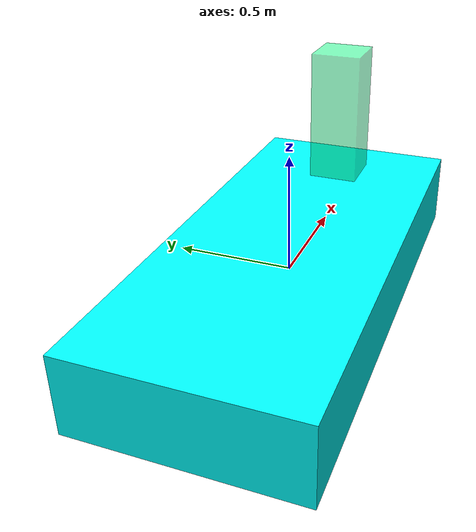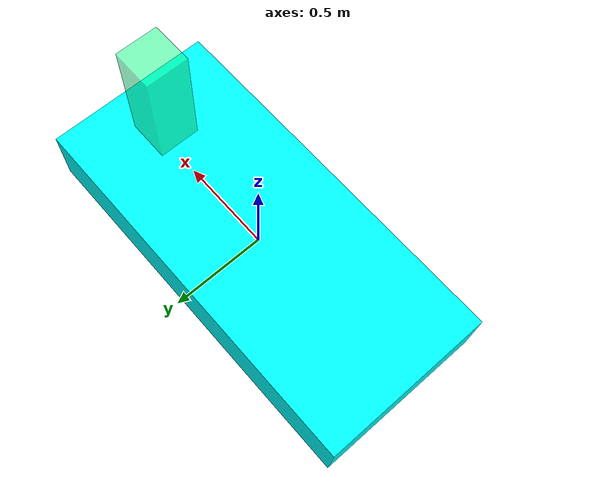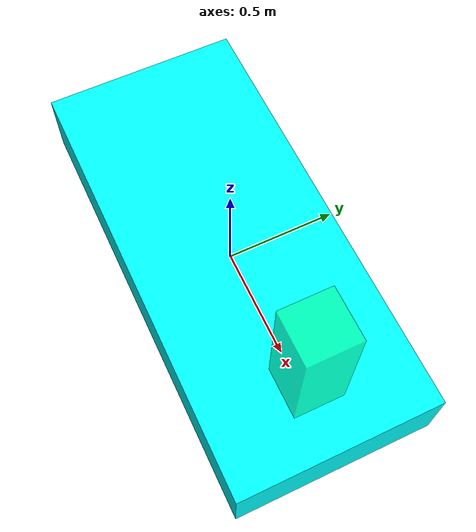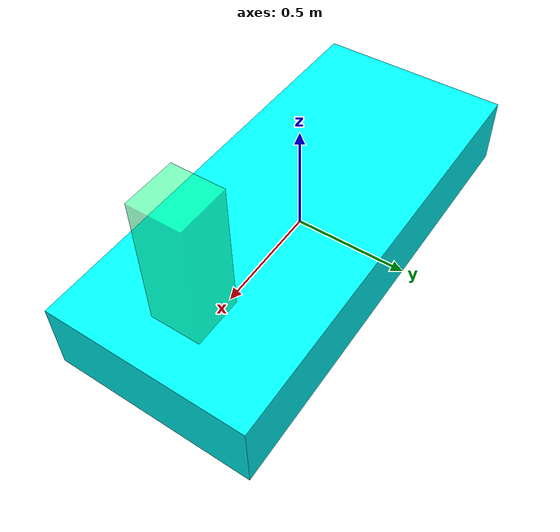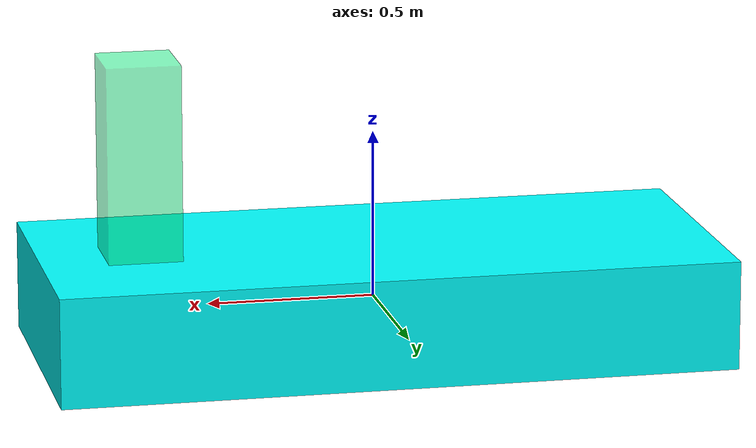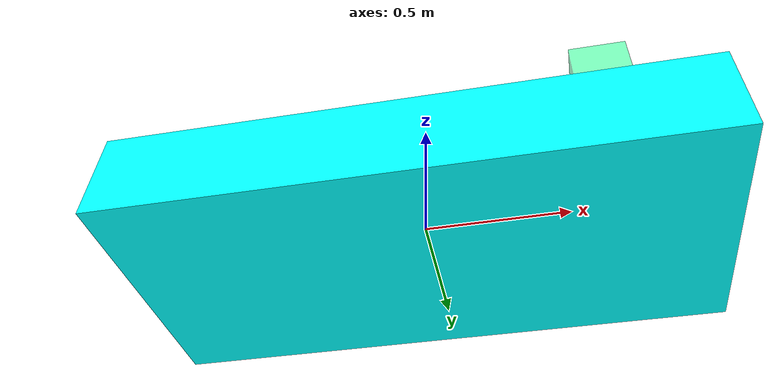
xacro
<?xml version="1.0"?>
<robot name="bautiro_fus1" xmlns:xacro="http://ros.org/wiki/xacro">

<!-- TODO: check names of sensor frames for each sensor in data -->
<link name="base_link" />
  <link name="viz_model">
      <visual>
      <geometry>
        <box size="2.01 0.9 0.327"/>
      </geometry>
      <material name="Cyan">
        <color rgba="0 1.0 1.0 1.0"/>
      </material>
    </visual>
  </link>
  <link name="viz_model_lift">
      <visual>
      <geometry>
        <box size="0.22 0.22 0.6"/>
      </geometry>
      <material name="Yelow">
        <color rgba="0 1.0 0.5 0.5"/>
      </material>
    </visual>
  </link>

  <link name="base_footprint"/>
  <link name="rpm_imu" />
  <link name="rpm_lidar_rear" />
  <link name="rpm_lidar_front" />

  <joint name="base_joint" type="fixed">
    <parent link="base_link"/>
    <child link="base_footprint"/>
    <origin xyz="0.0 0.0 -0.3" rpy="0 0 0"/>
  </joint>
  <!-- needs to specify the center of the box to draw -->
  <joint name="base_footprint_to_viz_model" type="fixed">
    <parent link="base_footprint"/>
    <child link="viz_model"/>
    <origin xyz="0.0 0.0 0.30" rpy="0 0 0"/>
  </joint>

  <!-- needs to specify the center of the box to draw -->
  <joint name="base_link_to_viz_model_lift" type="fixed">
    <parent link="base_link"/>
    <child link="viz_model_lift"/>
    <origin xyz="0.7 0.0 0.45" rpy="0 0 0"/>
  </joint>

  <joint name="base_link_to_rpm_lidar_rear" type="fixed">
    <parent link="base_link" />
    <child link="rpm_lidar_rear" />
    <origin xyz="-0.99226936 0.466518 0.59827304" rpy="0.000465723183 0.0126784158 0.744250199" />
  </joint>
  <joint name="base_link_to_rpm_lidar_front" type="fixed">
    <parent link="base_link" />
    <child link="rpm_lidar_front" />
    <origin xyz="0.93805789 -0.48013894 0.59890565" rpy="-0.02350701 -0.00860745 -2.43212323" />
  </joint>

  <joint name="base_link_to_rpm_imu" type="fixed">
    <parent link="base_link" />
    <child link="rpm_imu" />
    <origin xyz="0.72396978 -0.35270053  0.6527172" rpy="0.0 0.0 -1.675466667"/>
  </joint>

</robot>
